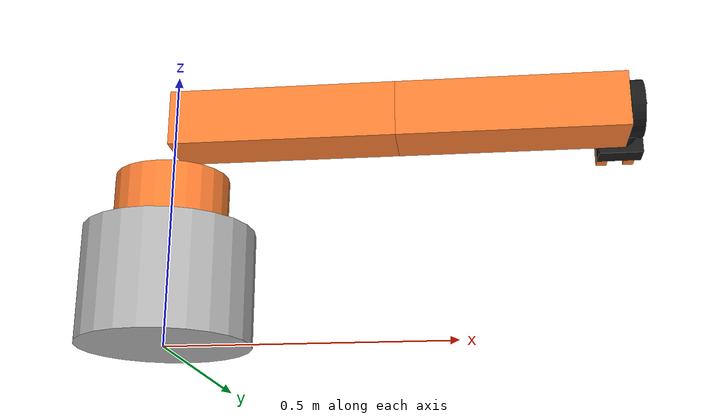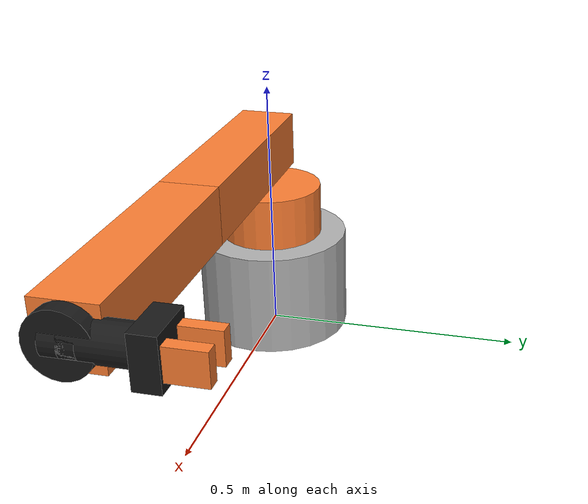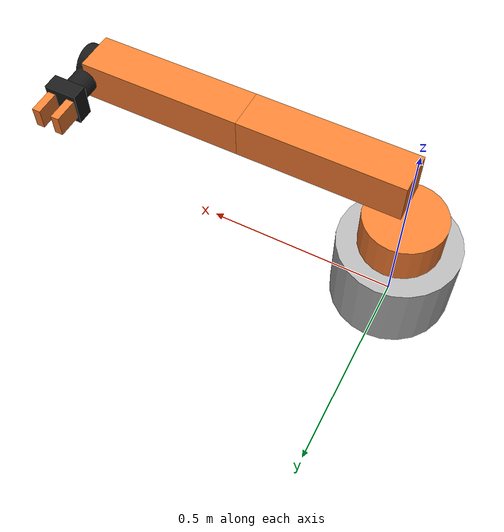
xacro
<?xml version="1.0"?>
<robot name="industrial_arm_6dof" xmlns:xacro="http://www.ros.org/wiki/xacro">
  <!--
    6-DOF Industrial Robotic Arm XACRO
    This model represents a standard 6-DOF industrial robotic arm
    with all revolute joints.
  -->

  <!-- Material definitions -->
  <material name="metal">
    <color rgba="0.7 0.7 0.7 1.0"/>
  </material>
  <material name="orange">
    <color rgba="1.0 0.5 0.2 1.0"/>
  </material>
  <material name="black">
    <color rgba="0.1 0.1 0.1 1.0"/>
  </material>

  <!-- Base Link -->
  <link name="base_link">
    <visual>
      <origin xyz="0 0 0.1" rpy="0 0 0"/>
      <geometry>
        <cylinder length="0.2" radius="0.15"/>
      </geometry>
      <material name="metal"/>
    </visual>
    <collision>
      <origin xyz="0 0 0.1" rpy="0 0 0"/>
      <geometry>
        <cylinder length="0.2" radius="0.15"/>
      </geometry>
    </collision>
    <inertial>
      <origin xyz="0 0 0.1" rpy="0 0 0"/>
      <mass value="10"/>
      <inertia ixx="0.1" ixy="0" ixz="0" iyy="0.1" iyz="0" izz="0.1"/>
    </inertial>
  </link>

  <!-- Joint 1: Base Rotation -->
  <joint name="joint1" type="revolute">
    <origin xyz="0 0 0.1" rpy="0 0 0"/>
    <parent link="base_link"/>
    <child link="link1"/>
    <axis xyz="0 0 1"/>
    <limit lower="-3.1415" upper="3.1415" effort="100" velocity="1.0"/>
  </joint>

  <link name="link1">
    <visual>
      <origin xyz="0 0 0.15" rpy="0 0 0"/>
      <geometry>
        <cylinder length="0.1" radius="0.1"/>
      </geometry>
      <material name="orange"/>
    </visual>
    <collision>
      <origin xyz="0 0 0.15" rpy="0 0 0"/>
      <geometry>
        <cylinder length="0.1" radius="0.1"/>
      </geometry>
    </collision>
    <inertial>
      <origin xyz="0 0 0.15" rpy="0 0 0"/>
      <mass value="5"/>
      <inertia ixx="0.05" ixy="0" ixz="0" iyy="0.05" iyz="0" izz="0.05"/>
    </inertial>
  </link>

  <!-- Joint 2: Shoulder -->
  <joint name="joint2" type="revolute">
    <origin xyz="0 0 0.3" rpy="1.5708 0 0"/>
    <parent link="link1"/>
    <child link="link2"/>
    <axis xyz="0 0 1"/>
    <limit lower="0" upper="3.1415" effort="100" velocity="1.0"/>
  </joint>

  <link name="link2">
    <visual>
      <origin xyz="0.2 0 0" rpy="0 0 0"/>
      <geometry>
        <box size="0.4 0.1 0.1"/>
      </geometry>
      <material name="orange"/>
    </visual>
    <collision>
      <origin xyz="0.2 0 0" rpy="0 0 0"/>
      <geometry>
        <box size="0.4 0.1 0.1"/>
      </geometry>
    </collision>
    <inertial>
      <origin xyz="0.2 0 0" rpy="0 0 0"/>
      <mass value="3"/>
      <inertia ixx="0.01" ixy="0" ixz="0" iyy="0.01" iyz="0" izz="0.01"/>
    </inertial>
  </link>

  <!-- Joint 3: Elbow -->
  <joint name="joint3" type="revolute">
    <origin xyz="0.4 0 0" rpy="1.5708 0 0"/>
    <parent link="link2"/>
    <child link="link3"/>
    <axis xyz="0 1 0"/>
    <limit lower="0" upper="3.1415" effort="100" velocity="1.0"/>
  </joint>

  <link name="link3">
    <visual>
      <origin xyz="0.2 0 0" rpy="0 0 0"/>
      <geometry>
        <box size="0.4 0.1 0.1"/>
      </geometry>
      <material name="orange"/>
    </visual>
    <collision>
      <origin xyz="0.2 0 0" rpy="0 0 0"/>
      <geometry>
        <box size="0.4 0.1 0.1"/>
      </geometry>
    </collision>
    <inertial>
      <origin xyz="0.2 0 0" rpy="0 0 0"/>
      <mass value="3"/>
      <inertia ixx="0.01" ixy="0" ixz="0" iyy="0.01" iyz="0" izz="0.01"/>
    </inertial>
  </link>

  <!-- Joint 4: Wrist 1 -->
  <joint name="joint4" type="revolute">
    <origin xyz="0.4 0 0" rpy="0 0 0"/>
    <parent link="link3"/>
    <child link="link4"/>
    <axis xyz="1 0 0"/>
    <limit lower="-3.1415" upper="3.1415" effort="100" velocity="1.0"/>
  </joint>

  <link name="link4">
    <visual>
      <origin xyz="0 0 0" rpy="0 1.5708 0"/>
      <geometry>
        <cylinder length="0.05" radius="0.05"/>
      </geometry>
      <material name="black"/>
    </visual>
    <collision>
      <origin xyz="0 0 0" rpy="0 1.5708 0"/>
      <geometry>
        <cylinder length="0.05" radius="0.05"/>
      </geometry>
    </collision>
    <inertial>
      <origin xyz="0 0 0" rpy="0 0 0"/>
      <mass value="1"/>
      <inertia ixx="0.001" ixy="0" ixz="0" iyy="0.001" iyz="0" izz="0.001"/>
    </inertial>
  </link>

  <!-- Joint 5: Wrist 2 -->
  <joint name="joint5" type="revolute">
    <origin xyz="0 0 0" rpy="0 1.5708 0"/>
    <parent link="link4"/>
    <child link="link5"/>
    <axis xyz="0 1 0"/>
    <limit lower="-3.1415" upper="3.1415" effort="100" velocity="1.0"/>
  </joint>

  <link name="link5">
    <visual>
      <origin xyz="0 0 0" rpy="1.5708 0 0"/>
      <geometry>
        <cylinder length="0.05" radius="0.03"/>
      </geometry>
      <material name="black"/>
    </visual>
    <collision>
      <origin xyz="0 0 0" rpy="1.5708 0 0"/>
      <geometry>
        <cylinder length="0.05" radius="0.03"/>
      </geometry>
    </collision>
    <inertial>
      <origin xyz="0 0 0" rpy="0 0 0"/>
      <mass value="0.5"/>
      <inertia ixx="0.0005" ixy="0" ixz="0" iyy="0.0005" iyz="0" izz="0.0005"/>
    </inertial>
  </link>

  <!-- Joint 6: Wrist 3 -->
  <joint name="joint6" type="revolute">
    <origin xyz="0 0 0" rpy="1.5708 0 0"/>
    <parent link="link5"/>
    <child link="link6"/>
    <axis xyz="1 0 0"/>
    <limit lower="-3.1415" upper="3.1415" effort="100" velocity="1.0"/>
  </joint>

  <link name="link6">
    <visual>
      <origin xyz="0 0 0.05" rpy="0 0 0"/>
      <geometry>
        <cylinder length="0.1" radius="0.03"/>
      </geometry>
      <material name="black"/>
    </visual>
    <collision>
      <origin xyz="0 0 0.05" rpy="0 0 0"/>
      <geometry>
        <cylinder length="0.1" radius="0.03"/>
      </geometry>
    </collision>
    <inertial>
      <origin xyz="0 0 0.05" rpy="0 0 0"/>
      <mass value="0.3"/>
      <inertia ixx="0.0001" ixy="0" ixz="0" iyy="0.0001" iyz="0" izz="0.0001"/>
    </inertial>
  </link>

  <!-- Gripper Base -->
  <joint name="gripper_base_joint" type="fixed">
    <origin xyz="0 0 0.1" rpy="0 0 0"/>
    <parent link="link6"/>
    <child link="gripper_base"/>
  </joint>

  <link name="gripper_base">
    <visual>
      <origin xyz="0 0 0.02" rpy="0 0 0"/>
      <geometry>
        <box size="0.08 0.08 0.04"/>
      </geometry>
      <material name="black"/>
    </visual>
    <collision>
      <origin xyz="0 0 0.02" rpy="0 0 0"/>
      <geometry>
        <box size="0.08 0.08 0.04"/>
      </geometry>
    </collision>
    <inertial>
      <origin xyz="0 0 0.02" rpy="0 0 0"/>
      <mass value="0.3"/>
      <inertia ixx="0.0002" ixy="0" ixz="0" iyy="0.0002" iyz="0" izz="0.0002"/>
    </inertial>
  </link>

  <!-- Left Finger -->
  <joint name="left_finger_joint" type="prismatic">
    <origin xyz="0 0 0.05" rpy="0 0 0"/>
    <parent link="gripper_base"/>
    <child link="left_finger"/>
    <axis xyz="0 1 0"/>
    <limit lower="0" upper="0.04" effort="50" velocity="0.5"/>
  </joint>

  <link name="left_finger">
    <visual>
      <origin xyz="0 0.025 0" rpy="0 0 0"/>
      <geometry>
        <box size="0.05 0.02 0.1"/>
      </geometry>
      <material name="orange"/>
    </visual>
    <collision>
      <origin xyz="0 0.025 0" rpy="0 0 0"/>
      <geometry>
        <box size="0.05 0.02 0.1"/>
      </geometry>
    </collision>
    <inertial>
      <origin xyz="0 0.025 0" rpy="0 0 0"/>
      <mass value="0.1"/>
      <inertia ixx="0.00005" ixy="0" ixz="0" iyy="0.00005" iyz="0" izz="0.00005"/>
    </inertial>
  </link>

  <!-- Right Finger -->
  <joint name="right_finger_joint" type="prismatic">
    <origin xyz="0 0 0.05" rpy="0 0 0"/>
    <parent link="gripper_base"/>
    <child link="right_finger"/>
    <axis xyz="0 1 0"/>
    <limit lower="-0.04" upper="0" effort="50" velocity="0.5"/>
  </joint>

  <link name="right_finger">
    <visual>
      <origin xyz="0 -0.025 0" rpy="0 0 0"/>
      <geometry>
        <box size="0.05 0.02 0.1"/>
      </geometry>
      <material name="orange"/>
    </visual>
    <collision>
      <origin xyz="0 -0.025 0" rpy="0 0 0"/>
      <geometry>
        <box size="0.05 0.02 0.1"/>
      </geometry>
    </collision>
    <inertial>
      <origin xyz="0 -0.025 0" rpy="0 0 0"/>
      <mass value="0.1"/>
      <inertia ixx="0.00005" ixy="0" ixz="0" iyy="0.00005" iyz="0" izz="0.00005"/>
    </inertial>
  </link>

  <!-- Transmission elements for ros_control -->
  <xacro:macro name="transmission_block" params="joint_name">
    <transmission name="${joint_name}_trans">
      <type>transmission_interface/SimpleTransmission</type>
      <joint name="${joint_name}">
        <hardwareInterface>hardware_interface/EffortJointInterface</hardwareInterface>
      </joint>
      <actuator name="${joint_name}_motor">
        <hardwareInterface>hardware_interface/EffortJointInterface</hardwareInterface>
        <mechanicalReduction>1</mechanicalReduction>
      </actuator>
    </transmission>
  </xacro:macro>

  <xacro:transmission_block joint_name="joint1"/>
  <xacro:transmission_block joint_name="joint2"/>
  <xacro:transmission_block joint_name="joint3"/>
  <xacro:transmission_block joint_name="joint4"/>
  <xacro:transmission_block joint_name="joint5"/>
  <xacro:transmission_block joint_name="joint6"/>
  <xacro:transmission_block joint_name="left_finger_joint"/>
  <xacro:transmission_block joint_name="right_finger_joint"/>

  <!-- Gazebo ROS Control Plugin -->
  <gazebo>
    <plugin name="gazebo_ros_control" filename="libgazebo_ros_control.so">
      <robotNamespace>/</robotNamespace>
    </plugin>
  </gazebo>

</robot>
